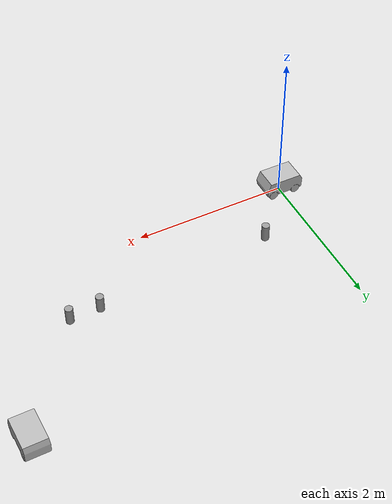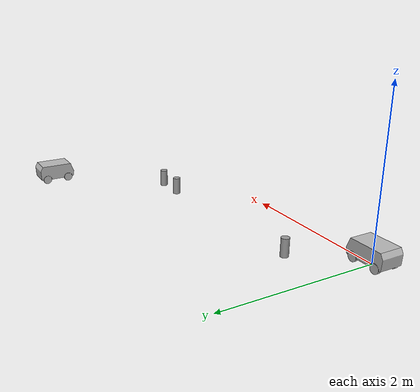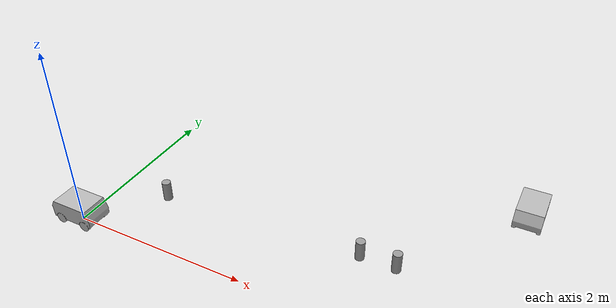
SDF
<sdf version="1.4">
 <world name="default">
  <include><uri>model://sun</uri></include>
  <light name="user_point_light_4" type="point">
   <pose>2.0 -3.0 2 0 -0 0</pose>
   <diffuse>0.3 0.3 0.3 1</diffuse>
   <specular>0.1 0.1 0.1 1</specular>
   <attenuation>
    <range>20</range>
    <constant>0.5</constant>
    <linear>0.01</linear>
    <quadratic>0.001</quadratic>
   </attenuation>
   <cast_shadows>0</cast_shadows>
   <direction>0 0 -1</direction>
  </light>
  <physics type="ode">
   <real_time_update_rate>1000.0</real_time_update_rate>
   <max_step_size>0.001</max_step_size>
   <real_time_factor>1</real_time_factor>
   <ode>
    <solver>
     <type>quick</type>
     <iters>150</iters>
     <precon_iters>0</precon_iters>
     <sor>1.400000</sor>
     <use_dynamic_moi_rescaling>1</use_dynamic_moi_rescaling>
    </solver>
    <constraints>
     <cfm>0.00001</cfm>
     <erp>0.2</erp>
     <contact_max_correcting_vel>2000.000000</contact_max_correcting_vel>
     <contact_surface_layer>0.01000</contact_surface_layer>
    </constraints>
   </ode>
  </physics>
  <scene><ambient>1 1 1 1</ambient><background>0.7 0.7 0.7 1</background><shadows>false</shadows></scene>
  <include>
   <uri>model://models/unit_cylinder</uri>
   <pose>3.31506 0.858347 0 0 0 0</pose>
   <name>unit_cylinder1</name>
  </include>
  <include>
   <uri>model://models/unit_cylinder</uri>
   <pose>2.92151 0.851226 0 0 0 0</pose>
   <name>unit_cylinder2</name>
  </include>
  <include>
   <uri>model://models/unit_cylinder</uri>
   <pose>0.604890 0.715556 0 0 0 0</pose>
   <name>unit_cylinder3</name>
  </include>
  <model name="bus1">
   <include><uri>model://models/bus1</uri></include>
   <plugin name="pose_animation_plugin" filename="libpose_animation_plugin.so">
    <total_time>28</total_time>
    <repeat>true</repeat>
    <key1><time>0</time><pose>2.2 1.45 0 0 0 0</pose></key1>
    <key2><time>4</time><pose>2.8 1.45 0 0 0 0</pose></key2>
    <key3><time>7</time><pose>3.0 1.6 0 0 0 1.5707</pose></key3>
    <key4><time>10</time><pose>3.0 2.2 0 0 0 1.5707</pose></key4>
    <key5><time>15</time><pose>3.0 2.2 0 0 0 1.5707</pose></key5>
    <key6><time>18</time><pose>3.0 1.6 0 0 0 1.5707</pose></key6>
    <key7><time>21</time><pose>2.8 1.45 0 0 0 0</pose></key7>
    <key8><time>25</time><pose>2.2 1.45 0 0 0 0</pose></key8>
   </plugin>
  </model>
  <model name="bus2">
   <include><uri>model://models/bus1</uri></include>
   <plugin name="pose_animation_plugin" filename="libpose_animation_plugin.so">
    <repeat>true</repeat>
    <total_time>20</total_time>
    <key1><time>0</time><pose>2.7 0.053 0 0 0 0.087646</pose></key1>
    <key2><time>8</time><pose>5.395567 0.324643 0 0 0 0.087646</pose></key2>
    <key3><time>16</time><pose>2.7 0.053 0 0 0 0.087646</pose></key3>
   </plugin>
  </model>
  <model name="bus3">
   <include><uri>model://models/bus1</uri></include>
   <pose>4.33532 2.22348 0 0 0 -1.56296</pose>
  </model>
 </world>
</sdf>

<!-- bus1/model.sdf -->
<sdf version='1.6'>
  <model name='bus1'>
    <link name='link_1'>
      <inertial>
        <mass>1</mass>
        <inertia>
          <ixx>0.166667</ixx>
          <ixy>0</ixy>
          <ixz>0</ixz>
          <iyy>0.166667</iyy>
          <iyz>0</iyz>
          <izz>0.166667</izz>
        </inertia>
      </inertial>
      <pose frame=''>-3e-06 0 0 0 -0 0</pose>
      <visual name='visual'>
        <pose frame=''>0 0 0 0 -0 0</pose>
        <geometry>
          <mesh>
            <uri>file://bus1/meshes/bus1.dae</uri>
            <scale>1 1 1</scale>
          </mesh>
        </geometry>
      </visual>
      <collision name='collision'>
        <laser_retro>0</laser_retro>
        <max_contacts>10</max_contacts>
        <pose frame=''>0 0 0 0 -0 0</pose>
        <geometry>
          <mesh>
            <uri>file://bus1/meshes/bus1.dae</uri>
            <scale>1 1 1</scale>
          </mesh>
        </geometry>
        <surface>
          <friction>
            <ode>
              <mu>1</mu>
              <mu2>1</mu2>
              <fdir1>0 0 0</fdir1>
              <slip1>0</slip1>
              <slip2>0</slip2>
            </ode>
            <torsional>
              <coefficient>1</coefficient>
              <patch_radius>0</patch_radius>
              <surface_radius>0</surface_radius>
              <use_patch_radius>1</use_patch_radius>
              <ode>
                <slip>0</slip>
              </ode>
            </torsional>
          </friction>
          <bounce>
            <restitution_coefficient>0</restitution_coefficient>
            <threshold>1e+06</threshold>
          </bounce>
          <contact>
            <collide_without_contact>0</collide_without_contact>
            <collide_without_contact_bitmask>1</collide_without_contact_bitmask>
            <collide_bitmask>1</collide_bitmask>
            <ode>
              <soft_cfm>0</soft_cfm>
              <soft_erp>0.2</soft_erp>
              <kp>1e+13</kp>
              <kd>1</kd>
              <max_vel>0.01</max_vel>
              <min_depth>0</min_depth>
            </ode>
            <bullet>
              <split_impulse>1</split_impulse>
              <split_impulse_penetration_threshold>-0.01</split_impulse_penetration_threshold>
              <soft_cfm>0</soft_cfm>
              <soft_erp>0.2</soft_erp>
              <kp>1e+13</kp>
              <kd>1</kd>
            </bullet>
          </contact>
        </surface>
      </collision>
    </link>
    <static>0</static>
    <allow_auto_disable>1</allow_auto_disable>
  </model>
</sdf>

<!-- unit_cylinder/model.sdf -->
<sdf version='1.6'>
  <model name='unit_cylinder'>
    <link name='link'>
      <inertial>
        <mass>1</mass>
        <inertia>
          <ixx>0.145833</ixx>
          <ixy>0</ixy>
          <ixz>0</ixz>
          <iyy>0.145833</iyy>
          <iyz>0</iyz>
          <izz>0.125</izz>
        </inertia>
        <pose frame=''>0 0 0 0 -0 0</pose>
      </inertial>
      <self_collide>0</self_collide>
      <enable_wind>0</enable_wind>
      <kinematic>0</kinematic>
      <pose frame=''>0 0 0 0 -0 0</pose>
      <gravity>1</gravity>
      <visual name='visual'>
        <geometry>
          <cylinder>
            <radius>0.05</radius>
            <length>0.23</length>
          </cylinder>
        </geometry>
        <material>
          <script>
            <name>Gazebo/Grey</name>
            <uri>file://media/materials/scripts/gazebo.material</uri>
          </script>
          <shader type='pixel'>
            <normal_map>__default__</normal_map>
          </shader>
          <ambient>0.3 0.3 0.3 1</ambient>
          <diffuse>0.7 0.7 0.7 1</diffuse>
          <specular>0.01 0.01 0.01 1</specular>
          <emissive>0 0 0 1</emissive>
        </material>
        <pose frame=''>0 0 0.115 0 -0 0</pose>
        <transparency>0</transparency>
        <cast_shadows>1</cast_shadows>
      </visual>
      <collision name='collision'>
        <laser_retro>0</laser_retro>
        <max_contacts>10</max_contacts>
        <pose frame=''>0 0 0.115 0 -0 0</pose>
        <geometry>
          <cylinder>
            <radius>0.05</radius>
            <length>0.23</length>
          </cylinder>
        </geometry>
        <surface>
          <friction>
            <ode>
              <mu>1</mu>
              <mu2>1</mu2>
              <fdir1>0 0 0</fdir1>
              <slip1>0</slip1>
              <slip2>0</slip2>
            </ode>
            <torsional>
              <coefficient>1</coefficient>
              <patch_radius>0</patch_radius>
              <surface_radius>0</surface_radius>
              <use_patch_radius>1</use_patch_radius>
              <ode>
                <slip>0</slip>
              </ode>
            </torsional>
          </friction>
          <bounce>
            <restitution_coefficient>0</restitution_coefficient>
            <threshold>1e+06</threshold>
          </bounce>
          <contact>
            <collide_without_contact>0</collide_without_contact>
            <collide_without_contact_bitmask>1</collide_without_contact_bitmask>
            <collide_bitmask>1</collide_bitmask>
            <ode>
              <soft_cfm>0</soft_cfm>
              <soft_erp>0.2</soft_erp>
              <kp>1e+13</kp>
              <kd>1</kd>
              <max_vel>0.01</max_vel>
              <min_depth>0</min_depth>
            </ode>
            <bullet>
              <split_impulse>1</split_impulse>
              <split_impulse_penetration_threshold>-0.01</split_impulse_penetration_threshold>
              <soft_cfm>0</soft_cfm>
              <soft_erp>0.2</soft_erp>
              <kp>1e+13</kp>
              <kd>1</kd>
            </bullet>
          </contact>
        </surface>
      </collision>
    </link>
    <static>0</static>
    <allow_auto_disable>1</allow_auto_disable>
  </model>
</sdf>
